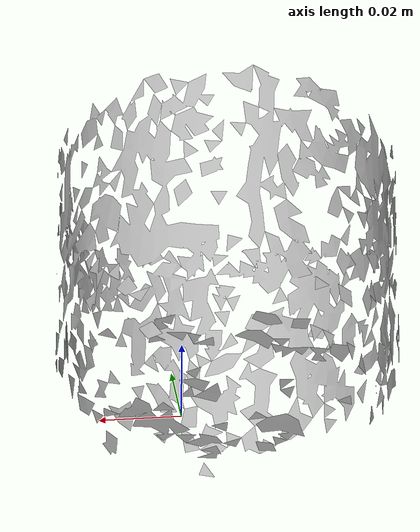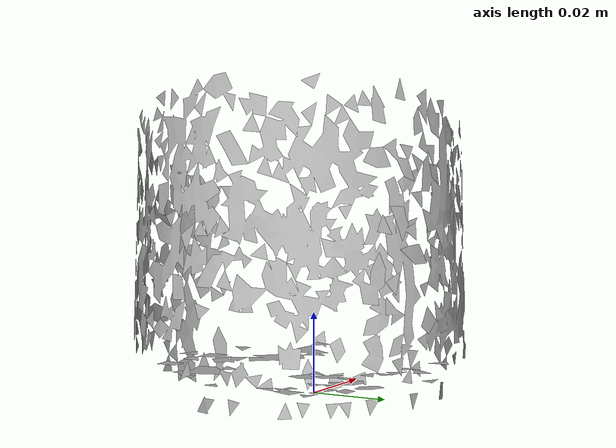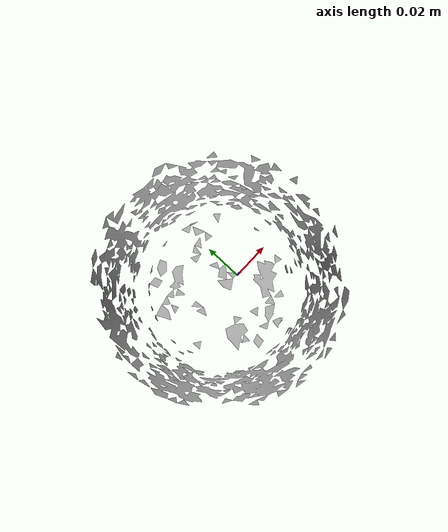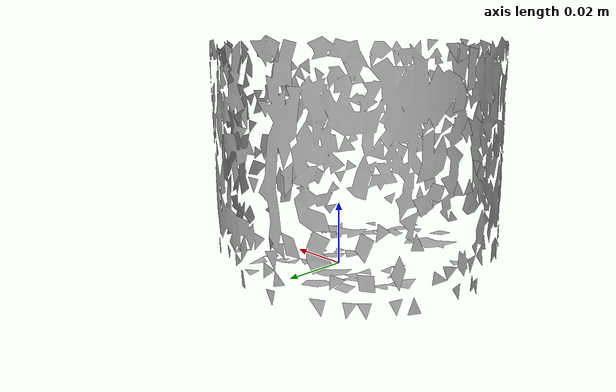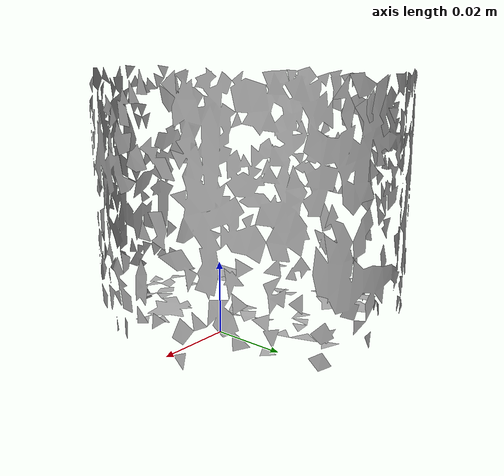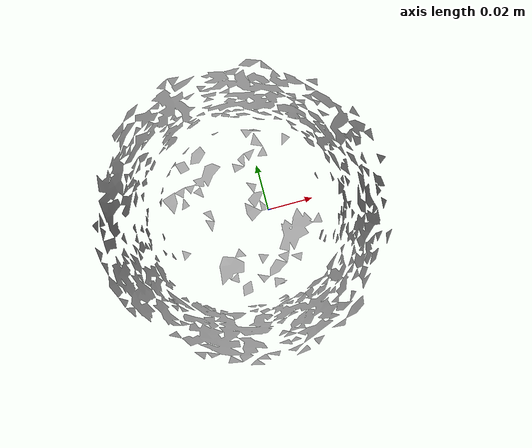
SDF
<?xml version="1.0" ?>
<sdf version="1.4">
  <model name='ycb_065-i_cups'>
    <link name='body'>
      <inertial>
        <mass>0.014</mass>
        <pose>-0.0109819690251 0.00230343151625 0.0366975737403 0 0 0</pose>
        <inertia>
          <ixx>1.95291473479e-05</ixx>
          <ixy>-2.89719595463e-08</ixy>
          <ixz>4.49116694016e-09</ixz>
          <iyy>1.94695455225e-05</iyy>
          <iyz>1.7509935981e-08</iyz>
          <izz>2.19821240132e-05</izz>
        </inertia>
      </inertial>
      <visual name='ycb_065-i_cups_visual'>
        <pose>0 0 0 0 0 0</pose>
        <geometry>
          <mesh>
            <uri>model://ycb_065-i_cups/meshes/textured.dae</uri>
          </mesh>
        </geometry>
      </visual>
      <collision name='ycb_065-i_cups_collision'>
        <pose>0 0 0 0 0 0</pose>
        <geometry>
          <mesh>
            <uri>model://ycb_065-i_cups/meshes/nontextured.stl</uri>
          </mesh>
        </geometry>
        <max_contacts>10</max_contacts>
      </collision>
    </link>
  </model>
</sdf>
